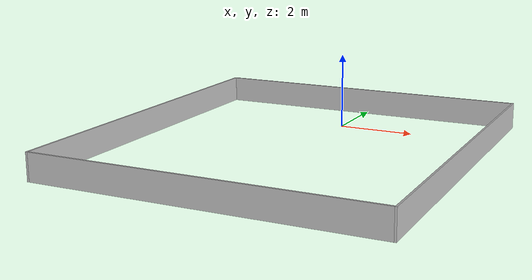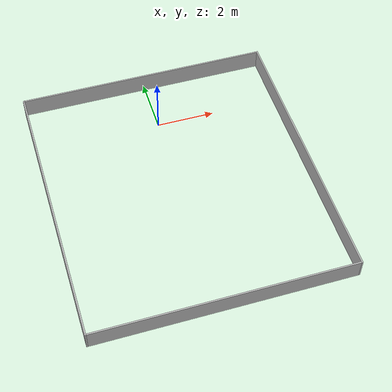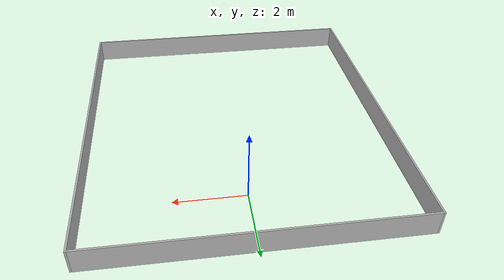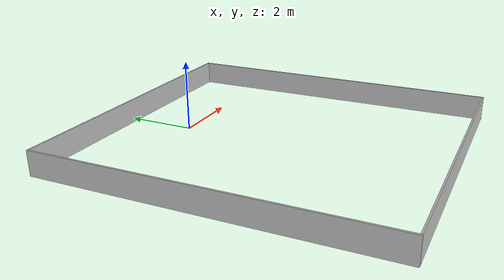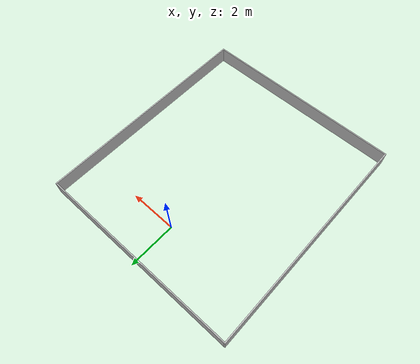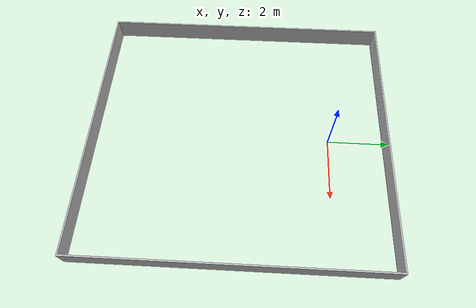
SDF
<sdf version="1.9">
 <world name="field">
  <model name="map_boundaries">
   <static>true</static>
   <link name="boundaries">
    <collision name="west">
     <pose>-4.3580 -2.9500 0.3500 0 0 0</pose>
     <geometry><box><size>0.0500 9.6000 0.7000</size></box></geometry>
    </collision>
    <visual name="west_visual">
     <pose>-4.3580 -2.9500 0.3500 0 0 0</pose>
     <geometry><box><size>0.0500 9.6000 0.7000</size></box></geometry>
    </visual>
    <collision name="east">
     <pose>4.2920 -2.9500 0.3500 0 0 0</pose>
     <geometry><box><size>0.0500 9.6000 0.7000</size></box></geometry>
    </collision>
    <visual name="east_visual">
     <pose>4.2920 -2.9500 0.3500 0 0 0</pose>
     <geometry><box><size>0.0500 9.6000 0.7000</size></box></geometry>
    </visual>
    <collision name="south">
     <pose>-0.0330 -7.7250 0.3500 0 0 0</pose>
     <geometry><box><size>8.6000 0.0500 0.7000</size></box></geometry>
    </collision>
    <visual name="south_visual">
     <pose>-0.0330 -7.7250 0.3500 0 0 0</pose>
     <geometry><box><size>8.6000 0.0500 0.7000</size></box></geometry>
    </visual>
    <collision name="north">
     <pose>-0.0330 1.8250 0.3500 0 0 0</pose>
     <geometry><box><size>8.6000 0.0500 0.7000</size></box></geometry>
    </collision>
    <visual name="north_visual">
     <pose>-0.0330 1.8250 0.3500 0 0 0</pose>
     <geometry><box><size>8.6000 0.0500 0.7000</size></box></geometry>
    </visual>
   </link>
  </model>
 </world>
</sdf>
